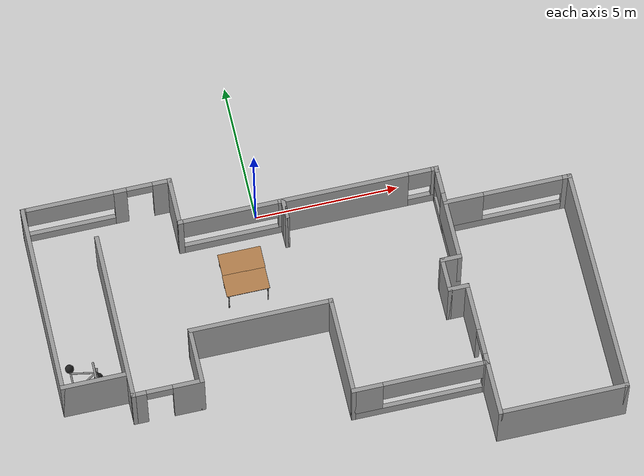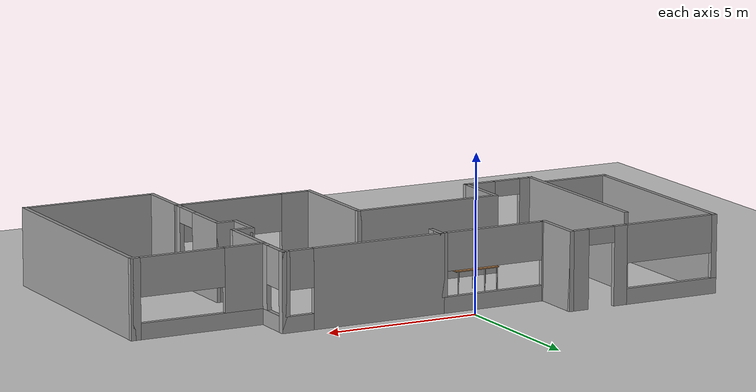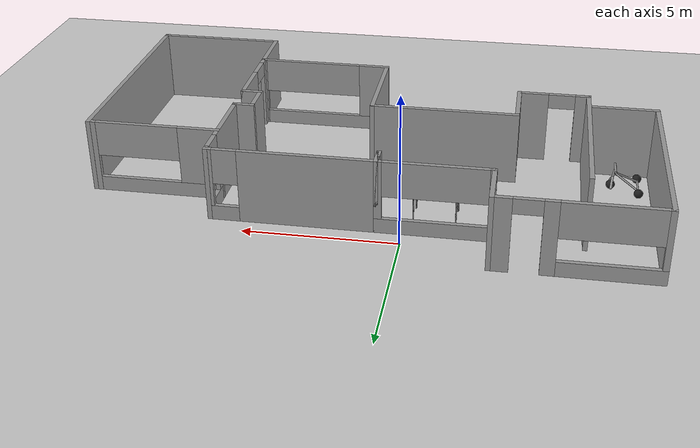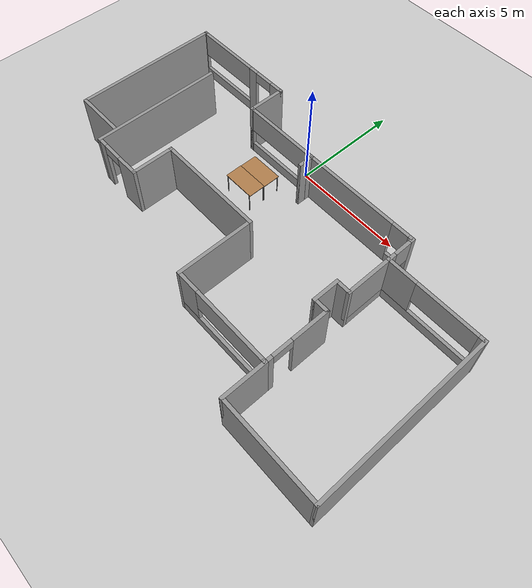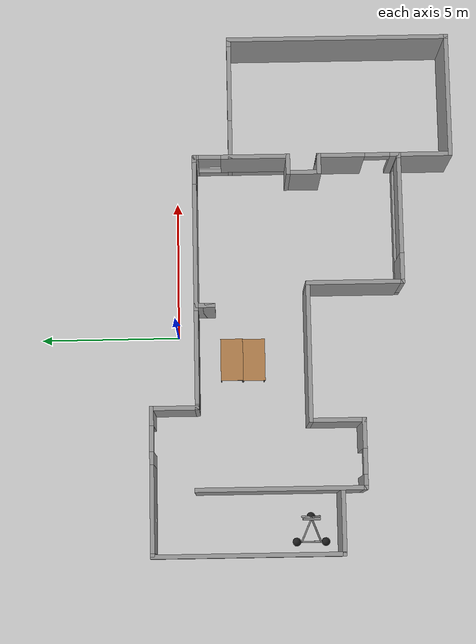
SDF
<sdf version="1.6">
 <world name="default">
  <model name="ground_plane">
   <static>1</static>
   <link name="link">
    <collision name="collision">
     <geometry><plane><normal>0 0 1</normal><size>100 100</size></plane></geometry>
     <surface>
      <contact><collide_bitmask>65535</collide_bitmask></contact>
      <friction><ode><mu>100</mu><mu2>50</mu2></ode></friction>
     </surface>
    </collision>
    <visual name="visual">
     <cast_shadows>0</cast_shadows>
     <geometry><plane><normal>0 0 1</normal><size>100 100</size></plane></geometry>
     <material>
      <script><uri>file://media/materials/scripts/gazebo.material</uri><name>Gazebo/Grey</name></script>
     </material>
    </visual>
   </link>
  </model>
  <model name="home">
   <pose>1.33369 -4.43199 0 0 -0 0</pose>
   <link name="Wall_1">
    <pose>-2.3 3.775 0 0 -0 0</pose>
    <visual name="Wall_1_Visual_0">
     <pose>-1.7772 0 1.25 0 -0 0</pose>
     <geometry><box><size>0.195597 0.15 2.5</size></box></geometry>
     <material>
      <script><uri>file://media/materials/scripts/gazebo.material</uri><name>Gazebo/Grey</name></script>
      <ambient>1 1 1 1</ambient>
     </material>
     <meta><layer>0</layer></meta>
    </visual>
    <collision name="Wall_1_Collision_0">
     <geometry><box><size>0.195597 0.15 2.5</size></box></geometry>
     <pose>-1.7772 0 1.25 0 -0 0</pose>
    </collision>
    <visual name="Wall_1_Visual_1">
     <pose>0.097799 0 0.25 0 -0 0</pose>
     <geometry><box><size>3.5544 0.15 0.5</size></box></geometry>
     <material>
      <script><uri>file://media/materials/scripts/gazebo.material</uri><name>Gazebo/Grey</name></script>
      <ambient>1 1 1 1</ambient>
     </material>
     <meta><layer>0</layer></meta>
    </visual>
    <collision name="Wall_1_Collision_1">
     <geometry><box><size>3.5544 0.15 0.5</size></box></geometry>
     <pose>0.097799 0 0.25 0 -0 0</pose>
    </collision>
    <visual name="Wall_1_Visual_2">
     <pose>1.74801 0 1.5 0 -0 0</pose>
     <geometry><box><size>0.253984 0.15 2</size></box></geometry>
     <material>
      <script><uri>file://media/materials/scripts/gazebo.material</uri><name>Gazebo/Grey</name></script>
      <ambient>1 1 1 1</ambient>
     </material>
     <meta><layer>0</layer></meta>
    </visual>
    <collision name="Wall_1_Collision_2">
     <geometry><box><size>0.253984 0.15 2</size></box></geometry>
     <pose>1.74801 0 1.5 0 -0 0</pose>
    </collision>
    <visual name="Wall_1_Visual_3">
     <pose>-0.029193 0 1.9 0 -0 0</pose>
     <geometry><box><size>3.30042 0.15 1.2</size></box></geometry>
     <material>
      <script><uri>file://media/materials/scripts/gazebo.material</uri><name>Gazebo/Grey</name></script>
      <ambient>1 1 1 1</ambient>
     </material>
     <meta><layer>0</layer></meta>
    </visual>
    <collision name="Wall_1_Collision_3">
     <geometry><box><size>3.30042 0.15 1.2</size></box></geometry>
     <pose>-0.029193 0 1.9 0 -0 0</pose>
    </collision>
   </link>
   <link name="Wall_10">
    <pose>2.55 -3.525 0 0 -0 3.14159</pose>
    <visual name="Wall_10_Visual_0">
     <pose>-2.27293 0 1.25 0 -0 0</pose>
     <geometry><box><size>0.204144 0.15 2.5</size></box></geometry>
     <material>
      <script><uri>file://media/materials/scripts/gazebo.material</uri><name>Gazebo/Grey</name></script>
      <ambient>1 1 1 1</ambient>
     </material>
     <meta><layer>0</layer></meta>
    </visual>
    <collision name="Wall_10_Collision_0">
     <geometry><box><size>0.204144 0.15 2.5</size></box></geometry>
     <pose>-2.27293 0 1.25 0 -0 0</pose>
    </collision>
    <visual name="Wall_10_Visual_1">
     <pose>0.102072 0 0.25 0 -0 0</pose>
     <geometry><box><size>4.54586 0.15 0.5</size></box></geometry>
     <material>
      <script><uri>file://media/materials/scripts/gazebo.material</uri><name>Gazebo/Grey</name></script>
      <ambient>1 1 1 1</ambient>
     </material>
     <meta><layer>0</layer></meta>
    </visual>
    <collision name="Wall_10_Collision_1">
     <geometry><box><size>4.54586 0.15 0.5</size></box></geometry>
     <pose>0.102072 0 0.25 0 -0 0</pose>
    </collision>
    <visual name="Wall_10_Visual_2">
     <pose>1.83208 0 1.5 0 -0 0</pose>
     <geometry><box><size>1.08584 0.15 2</size></box></geometry>
     <material>
      <script><uri>file://media/materials/scripts/gazebo.material</uri><name>Gazebo/Grey</name></script>
      <ambient>1 1 1 1</ambient>
     </material>
     <meta><layer>0</layer></meta>
    </visual>
    <collision name="Wall_10_Collision_2">
     <geometry><box><size>1.08584 0.15 2</size></box></geometry>
     <pose>1.83208 0 1.5 0 -0 0</pose>
    </collision>
    <visual name="Wall_10_Visual_3">
     <pose>-0.440846 0 1.9 0 -0 0</pose>
     <geometry><box><size>3.46002 0.15 1.2</size></box></geometry>
     <material>
      <script><uri>file://media/materials/scripts/gazebo.material</uri><name>Gazebo/Grey</name></script>
      <ambient>1 1 1 1</ambient>
     </material>
     <meta><layer>0</layer></meta>
    </visual>
    <collision name="Wall_10_Collision_3">
     <geometry><box><size>3.46002 0.15 1.2</size></box></geometry>
     <pose>-0.440846 0 1.9 0 -0 0</pose>
    </collision>
   </link>
   <link name="Wall_11">
    <collision name="Wall_11_Collision">
     <geometry><box><size>3.5 0.15 2.5</size></box></geometry>
     <pose>0 0 1.25 0 -0 0</pose>
    </collision>
    <visual name="Wall_11_Visual">
     <pose>0 0 1.25 0 -0 0</pose>
     <geometry><box><size>3.5 0.15 2.5</size></box></geometry>
     <material>
      <script><uri>file://media/materials/scripts/gazebo.material</uri><name>Gazebo/Grey</name></script>
      <ambient>1 1 1 1</ambient>
     </material>
     <meta><layer>0</layer></meta>
    </visual>
    <pose>0.25 -1.85 0 0 -0 1.5708</pose>
   </link>
   <link name="Wall_12">
    <collision name="Wall_12_Collision">
     <geometry><box><size>5 0.15 2.5</size></box></geometry>
     <pose>0 0 1.25 0 -0 0</pose>
    </collision>
    <visual name="Wall_12_Visual">
     <pose>0 0 1.25 0 -0 0</pose>
     <geometry><box><size>5 0.15 2.5</size></box></geometry>
     <material>
      <script><uri>file://media/materials/scripts/gazebo.material</uri><name>Gazebo/Grey</name></script>
      <ambient>1 1 1 1</ambient>
     </material>
     <meta><layer>0</layer></meta>
    </visual>
    <pose>-2.175 -0.175 0 0 -0 3.14159</pose>
   </link>
   <link name="Wall_13">
    <collision name="Wall_13_Collision">
     <geometry><box><size>2 0.15 2.5</size></box></geometry>
     <pose>0 0 1.25 0 -0 0</pose>
    </collision>
    <visual name="Wall_13_Visual">
     <pose>0 0 1.25 0 -0 0</pose>
     <geometry><box><size>2 0.15 2.5</size></box></geometry>
     <material>
      <script><uri>file://media/materials/scripts/gazebo.material</uri><name>Gazebo/Grey</name></script>
      <ambient>1 1 1 1</ambient>
     </material>
     <meta><layer>0</layer></meta>
    </visual>
    <pose>-4.6 -1.1 0 0 -0 -1.5708</pose>
   </link>
   <link name="Wall_14">
    <pose>-5.775 -2.025 0 0 -0 3.14159</pose>
    <visual name="Wall_14_Visual_0">
     <pose>-0.710889 0 1.25 0 -0 0</pose>
     <geometry><box><size>1.07822 0.15 2.5</size></box></geometry>
     <material>
      <script><uri>file://media/materials/scripts/gazebo.material</uri><name>Gazebo/Grey</name></script>
      <ambient>1 1 1 1</ambient>
     </material>
     <meta><layer>0</layer></meta>
    </visual>
    <collision name="Wall_14_Collision_0">
     <geometry><box><size>1.07822 0.15 2.5</size></box></geometry>
     <pose>-0.710889 0 1.25 0 -0 0</pose>
    </collision>
    <visual name="Wall_14_Visual_1">
     <pose>0.989111 0 1.25 0 -0 0</pose>
     <geometry><box><size>0.521779 0.15 2.5</size></box></geometry>
     <material>
      <script><uri>file://media/materials/scripts/gazebo.material</uri><name>Gazebo/Grey</name></script>
      <ambient>1 1 1 1</ambient>
     </material>
     <meta><layer>0</layer></meta>
    </visual>
    <collision name="Wall_14_Collision_1">
     <geometry><box><size>0.521779 0.15 2.5</size></box></geometry>
     <pose>0.989111 0 1.25 0 -0 0</pose>
    </collision>
    <visual name="Wall_14_Visual_2">
     <pose>0.278221 0 2.25 0 -0 0</pose>
     <geometry><box><size>0.9 0.15 0.5</size></box></geometry>
     <material>
      <script><uri>file://media/materials/scripts/gazebo.material</uri><name>Gazebo/Grey</name></script>
      <ambient>1 1 1 1</ambient>
     </material>
     <meta><layer>0</layer></meta>
    </visual>
    <collision name="Wall_14_Collision_2">
     <geometry><box><size>0.9 0.15 0.5</size></box></geometry>
     <pose>0.278221 0 2.25 0 -0 0</pose>
    </collision>
   </link>
   <link name="Wall_15">
    <collision name="Wall_15_Collision">
     <geometry><box><size>6 0.15 2.5</size></box></geometry>
     <pose>0 0 1.25 0 -0 0</pose>
    </collision>
    <visual name="Wall_15_Visual">
     <pose>0 0 1.25 0 -0 0</pose>
     <geometry><box><size>6 0.15 2.5</size></box></geometry>
     <material>
      <script><uri>file://media/materials/scripts/gazebo.material</uri><name>Gazebo/Grey</name></script>
      <ambient>1 1 1 1</ambient>
     </material>
     <meta><layer>0</layer></meta>
    </visual>
    <pose>-6.95 0.9 0 0 -0 1.5708</pose>
   </link>
   <link name="Wall_17">
    <collision name="Wall_17_Collision">
     <geometry><box><size>1.75 0.15 2.5</size></box></geometry>
     <pose>0 0 1.25 0 -0 0</pose>
    </collision>
    <visual name="Wall_17_Visual">
     <pose>0 0 1.25 0 -0 0</pose>
     <geometry><box><size>1.75 0.15 2.5</size></box></geometry>
     <material>
      <script><uri>file://media/materials/scripts/gazebo.material</uri><name>Gazebo/Grey</name></script>
      <ambient>1 1 1 1</ambient>
     </material>
     <meta><layer>0</layer></meta>
    </visual>
    <pose>-4.1 4.575 0 0 -0 1.5708</pose>
   </link>
   <link name="Wall_18">
    <pose>-6.65 5.375 0 0 -0 3.14159</pose>
    <visual name="Wall_18_Visual_0">
     <pose>-2.28809 0 1.25 0 -0 0</pose>
     <geometry><box><size>0.673815 0.15 2.5</size></box></geometry>
     <material>
      <script><uri>file://media/materials/scripts/gazebo.material</uri><name>Gazebo/Grey</name></script>
      <ambient>1 1 1 1</ambient>
     </material>
     <meta><layer>0</layer></meta>
    </visual>
    <collision name="Wall_18_Collision_0">
     <geometry><box><size>0.673815 0.15 2.5</size></box></geometry>
     <pose>-2.28809 0 1.25 0 -0 0</pose>
    </collision>
    <visual name="Wall_18_Visual_1">
     <pose>-0.824481 0 1.25 0 -0 0</pose>
     <geometry><box><size>0.45341 0.15 2.5</size></box></geometry>
     <material>
      <script><uri>file://media/materials/scripts/gazebo.material</uri><name>Gazebo/Grey</name></script>
      <ambient>1 1 1 1</ambient>
     </material>
     <meta><layer>0</layer></meta>
    </visual>
    <collision name="Wall_18_Collision_1">
     <geometry><box><size>0.45341 0.15 2.5</size></box></geometry>
     <pose>-0.824481 0 1.25 0 -0 0</pose>
    </collision>
    <visual name="Wall_18_Visual_2">
     <pose>1.01361 0 0.25 0 -0 0</pose>
     <geometry><box><size>3.22278 0.15 0.5</size></box></geometry>
     <material>
      <script><uri>file://media/materials/scripts/gazebo.material</uri><name>Gazebo/Grey</name></script>
      <ambient>1 1 1 1</ambient>
     </material>
     <meta><layer>0</layer></meta>
    </visual>
    <collision name="Wall_18_Collision_2">
     <geometry><box><size>3.22278 0.15 0.5</size></box></geometry>
     <pose>1.01361 0 0.25 0 -0 0</pose>
    </collision>
    <visual name="Wall_18_Visual_3">
     <pose>2.53082 0 1.5 0 -0 0</pose>
     <geometry><box><size>0.188359 0.15 2</size></box></geometry>
     <material>
      <script><uri>file://media/materials/scripts/gazebo.material</uri><name>Gazebo/Grey</name></script>
      <ambient>1 1 1 1</ambient>
     </material>
     <meta><layer>0</layer></meta>
    </visual>
    <collision name="Wall_18_Collision_3">
     <geometry><box><size>0.188359 0.15 2</size></box></geometry>
     <pose>2.53082 0 1.5 0 -0 0</pose>
    </collision>
    <visual name="Wall_18_Visual_4">
     <pose>0.919433 0 1.9 0 -0 0</pose>
     <geometry><box><size>3.03442 0.15 1.2</size></box></geometry>
     <material>
      <script><uri>file://media/materials/scripts/gazebo.material</uri><name>Gazebo/Grey</name></script>
      <ambient>1 1 1 1</ambient>
     </material>
     <meta><layer>0</layer></meta>
    </visual>
    <collision name="Wall_18_Collision_4">
     <geometry><box><size>3.03442 0.15 1.2</size></box></geometry>
     <pose>0.919433 0 1.9 0 -0 0</pose>
    </collision>
    <visual name="Wall_18_Visual_5">
     <pose>-1.50118 0 2.25 0 -0 0</pose>
     <geometry><box><size>0.9 0.15 0.5</size></box></geometry>
     <material>
      <script><uri>file://media/materials/scripts/gazebo.material</uri><name>Gazebo/Grey</name></script>
      <ambient>1 1 1 1</ambient>
     </material>
     <meta><layer>0</layer></meta>
    </visual>
    <collision name="Wall_18_Collision_5">
     <geometry><box><size>0.9 0.15 0.5</size></box></geometry>
     <pose>-1.50118 0 2.25 0 -0 0</pose>
    </collision>
   </link>
   <link name="Wall_19">
    <collision name="Wall_19_Collision">
     <geometry><box><size>6.75 0.15 2.5</size></box></geometry>
     <pose>0 0 1.25 0 -0 0</pose>
    </collision>
    <visual name="Wall_19_Visual">
     <pose>0 0 1.25 0 -0 0</pose>
     <geometry><box><size>6.75 0.15 2.5</size></box></geometry>
     <material>
      <script><uri>file://media/materials/scripts/gazebo.material</uri><name>Gazebo/Grey</name></script>
      <ambient>1 1 1 1</ambient>
     </material>
     <meta><layer>0</layer></meta>
    </visual>
    <pose>-9.2 2.075 0 0 -0 -1.5708</pose>
   </link>
   <link name="Wall_2">
    <collision name="Wall_2_Collision">
     <geometry><box><size>0.75 0.15 2.5</size></box></geometry>
     <pose>0 0 1.25 0 -0 0</pose>
    </collision>
    <visual name="Wall_2_Visual">
     <pose>0 0 1.25 0 -0 0</pose>
     <geometry><box><size>0.75 0.15 2.5</size></box></geometry>
     <material>
      <script><uri>file://media/materials/scripts/gazebo.material</uri><name>Gazebo/Grey</name></script>
      <ambient>1 1 1 1</ambient>
     </material>
     <meta><layer>0</layer></meta>
    </visual>
    <pose>-0.5 3.475 0 0 -0 -1.5708</pose>
   </link>
   <link name="Wall_20">
    <collision name="Wall_20_Collision">
     <geometry><box><size>2.25 0.15 2.5</size></box></geometry>
     <pose>0 0 1.25 0 -0 0</pose>
    </collision>
    <visual name="Wall_20_Visual">
     <pose>0 0 1.25 0 -0 0</pose>
     <geometry><box><size>2.25 0.15 2.5</size></box></geometry>
     <material>
      <script><uri>file://media/materials/scripts/gazebo.material</uri><name>Gazebo/Grey</name></script>
      <ambient>1 1 1 1</ambient>
     </material>
     <meta><layer>0</layer></meta>
    </visual>
    <pose>-8.15 -1.225 0 0 -0 0</pose>
   </link>
   <link name="Wall_22">
    <collision name="Wall_22_Collision">
     <geometry><box><size>2 0.15 2.5</size></box></geometry>
     <pose>0 0 1.25 0 -0 0</pose>
    </collision>
    <visual name="Wall_22_Visual">
     <pose>0 0 1.25 0 -0 0</pose>
     <geometry><box><size>2 0.15 2.5</size></box></geometry>
     <material>
      <script><uri>file://media/materials/scripts/gazebo.material</uri><name>Gazebo/Grey</name></script>
      <ambient>1 1 1 1</ambient>
     </material>
     <meta><layer>0</layer></meta>
    </visual>
    <pose>4.85 -4.45 0 0 -0 -1.5708</pose>
   </link>
   <link name="Wall_23">
    <collision name="Wall_23_Collision">
     <geometry><box><size>4.5 0.15 2.5</size></box></geometry>
     <pose>0 0 1.25 0 -0 0</pose>
    </collision>
    <visual name="Wall_23_Visual">
     <pose>0 0 1.25 0 -0 0</pose>
     <geometry><box><size>4.5 0.15 2.5</size></box></geometry>
     <material>
      <script><uri>file://media/materials/scripts/gazebo.material</uri><name>Gazebo/Grey</name></script>
      <ambient>1 1 1 1</ambient>
     </material>
     <meta><layer>0</layer></meta>
    </visual>
    <pose>7.025 -5.375 0 0 -0 0</pose>
   </link>
   <link name="Wall_24">
    <collision name="Wall_24_Collision">
     <geometry><box><size>8 0.15 2.5</size></box></geometry>
     <pose>0 0 1.25 0 -0 0</pose>
    </collision>
    <visual name="Wall_24_Visual">
     <pose>0 0 1.25 0 -0 0</pose>
     <geometry><box><size>8 0.15 2.5</size></box></geometry>
     <material>
      <script><uri>file://media/materials/scripts/gazebo.material</uri><name>Gazebo/Grey</name></script>
      <ambient>1 1 1 1</ambient>
     </material>
     <meta><layer>0</layer></meta>
    </visual>
    <pose>9.2 -1.45 0 0 -0 1.5708</pose>
   </link>
   <link name="Wall_25">
    <pose>7.025 2.475 0 0 -0 3.14159</pose>
    <visual name="Wall_25_Visual_0">
     <pose>-2.08764 0 1.25 0 -0 0</pose>
     <geometry><box><size>0.324712 0.15 2.5</size></box></geometry>
     <material>
      <script><uri>file://media/materials/scripts/gazebo.material</uri><name>Gazebo/Grey</name></script>
      <ambient>1 1 1 1</ambient>
     </material>
     <meta><layer>0</layer></meta>
    </visual>
    <collision name="Wall_25_Collision_0">
     <geometry><box><size>0.324712 0.15 2.5</size></box></geometry>
     <pose>-2.08764 0 1.25 0 -0 0</pose>
    </collision>
    <visual name="Wall_25_Visual_1">
     <pose>0.162356 0 0.25 0 -0 0</pose>
     <geometry><box><size>4.17529 0.15 0.5</size></box></geometry>
     <material>
      <script><uri>file://media/materials/scripts/gazebo.material</uri><name>Gazebo/Grey</name></script>
      <ambient>1 1 1 1</ambient>
     </material>
     <meta><layer>0</layer></meta>
    </visual>
    <collision name="Wall_25_Collision_1">
     <geometry><box><size>4.17529 0.15 0.5</size></box></geometry>
     <pose>0.162356 0 0.25 0 -0 0</pose>
    </collision>
    <visual name="Wall_25_Visual_2">
     <pose>1.54656 0 1.5 0 -0 0</pose>
     <geometry><box><size>1.40687 0.15 2</size></box></geometry>
     <material>
      <script><uri>file://media/materials/scripts/gazebo.material</uri><name>Gazebo/Grey</name></script>
      <ambient>1 1 1 1</ambient>
     </material>
     <meta><layer>0</layer></meta>
    </visual>
    <collision name="Wall_25_Collision_2">
     <geometry><box><size>1.40687 0.15 2</size></box></geometry>
     <pose>1.54656 0 1.5 0 -0 0</pose>
    </collision>
    <visual name="Wall_25_Visual_3">
     <pose>-0.54108 0 1.9 0 -0 0</pose>
     <geometry><box><size>2.76842 0.15 1.2</size></box></geometry>
     <material>
      <script><uri>file://media/materials/scripts/gazebo.material</uri><name>Gazebo/Grey</name></script>
      <ambient>1 1 1 1</ambient>
     </material>
     <meta><layer>0</layer></meta>
    </visual>
    <collision name="Wall_25_Collision_3">
     <geometry><box><size>2.76842 0.15 1.2</size></box></geometry>
     <pose>-0.54108 0 1.9 0 -0 0</pose>
    </collision>
   </link>
   <link name="Wall_3">
    <collision name="Wall_3_Collision">
     <geometry><box><size>0.75 0.15 2.5</size></box></geometry>
     <pose>0 0 1.25 0 -0 0</pose>
    </collision>
    <visual name="Wall_3_Visual">
     <pose>0 0 1.25 0 -0 0</pose>
     <geometry><box><size>0.75 0.15 2.5</size></box></geometry>
     <material>
      <script><uri>file://media/materials/scripts/gazebo.material</uri><name>Gazebo/Grey</name></script>
      <ambient>1 1 1 1</ambient>
     </material>
     <meta><layer>0</layer></meta>
    </visual>
    <pose>-0.5 3.475 0 0 -0 1.5708</pose>
   </link>
   <link name="Wall_4">
    <pose>2.175 3.775 0 0 -0 0</pose>
    <visual name="Wall_4_Visual_0">
     <pose>-0.528672 0 1.25 0 -0 0</pose>
     <geometry><box><size>4.44266 0.15 2.5</size></box></geometry>
     <material>
      <script><uri>file://media/materials/scripts/gazebo.material</uri><name>Gazebo/Grey</name></script>
      <ambient>1 1 1 1</ambient>
     </material>
     <meta><layer>0</layer></meta>
    </visual>
    <collision name="Wall_4_Collision_0">
     <geometry><box><size>4.44266 0.15 2.5</size></box></geometry>
     <pose>-0.528672 0 1.25 0 -0 0</pose>
    </collision>
    <visual name="Wall_4_Visual_1">
     <pose>2.22133 0 0.25 0 -0 0</pose>
     <geometry><box><size>1.05734 0.15 0.5</size></box></geometry>
     <material>
      <script><uri>file://media/materials/scripts/gazebo.material</uri><name>Gazebo/Grey</name></script>
      <ambient>1 1 1 1</ambient>
     </material>
     <meta><layer>0</layer></meta>
    </visual>
    <collision name="Wall_4_Collision_1">
     <geometry><box><size>1.05734 0.15 0.5</size></box></geometry>
     <pose>2.22133 0 0.25 0 -0 0</pose>
    </collision>
    <visual name="Wall_4_Visual_2">
     <pose>2.62133 0 1.5 0 -0 0</pose>
     <geometry><box><size>0.257344 0.15 2</size></box></geometry>
     <material>
      <script><uri>file://media/materials/scripts/gazebo.material</uri><name>Gazebo/Grey</name></script>
      <ambient>1 1 1 1</ambient>
     </material>
     <meta><layer>0</layer></meta>
    </visual>
    <collision name="Wall_4_Collision_2">
     <geometry><box><size>0.257344 0.15 2</size></box></geometry>
     <pose>2.62133 0 1.5 0 -0 0</pose>
    </collision>
    <visual name="Wall_4_Visual_3">
     <pose>2.09266 0 1.9 0 -0 0</pose>
     <geometry><box><size>0.8 0.15 1.2</size></box></geometry>
     <material>
      <script><uri>file://media/materials/scripts/gazebo.material</uri><name>Gazebo/Grey</name></script>
      <ambient>1 1 1 1</ambient>
     </material>
     <meta><layer>0</layer></meta>
    </visual>
    <collision name="Wall_4_Collision_3">
     <geometry><box><size>0.8 0.15 1.2</size></box></geometry>
     <pose>2.09266 0 1.9 0 -0 0</pose>
    </collision>
   </link>
   <link name="Wall_5">
    <pose>4.85 2.1 0 0 -0 -1.5708</pose>
    <visual name="Wall_5_Visual_0">
     <pose>-1.63495 0 1.25 0 -0 0</pose>
     <geometry><box><size>0.230105 0.15 2.5</size></box></geometry>
     <material>
      <script><uri>file://media/materials/scripts/gazebo.material</uri><name>Gazebo/Grey</name></script>
      <ambient>1 1 1 1</ambient>
     </material>
     <meta><layer>0</layer></meta>
    </visual>
    <collision name="Wall_5_Collision_0">
     <geometry><box><size>0.230105 0.15 2.5</size></box></geometry>
     <pose>-1.63495 0 1.25 0 -0 0</pose>
    </collision>
    <visual name="Wall_5_Visual_1">
     <pose>0.115053 0 0.25 0 -0 0</pose>
     <geometry><box><size>3.26989 0.15 0.5</size></box></geometry>
     <material>
      <script><uri>file://media/materials/scripts/gazebo.material</uri><name>Gazebo/Grey</name></script>
      <ambient>1 1 1 1</ambient>
     </material>
     <meta><layer>0</layer></meta>
    </visual>
    <collision name="Wall_5_Collision_1">
     <geometry><box><size>3.26989 0.15 0.5</size></box></geometry>
     <pose>0.115053 0 0.25 0 -0 0</pose>
    </collision>
    <visual name="Wall_5_Visual_2">
     <pose>0.515053 0 1.5 0 -0 0</pose>
     <geometry><box><size>2.4699 0.15 2</size></box></geometry>
     <material>
      <script><uri>file://media/materials/scripts/gazebo.material</uri><name>Gazebo/Grey</name></script>
      <ambient>1 1 1 1</ambient>
     </material>
     <meta><layer>0</layer></meta>
    </visual>
    <collision name="Wall_5_Collision_2">
     <geometry><box><size>2.4699 0.15 2</size></box></geometry>
     <pose>0.515053 0 1.5 0 -0 0</pose>
    </collision>
    <visual name="Wall_5_Visual_3">
     <pose>-1.1199 0 1.9 0 -0 0</pose>
     <geometry><box><size>0.8 0.15 1.2</size></box></geometry>
     <material>
      <script><uri>file://media/materials/scripts/gazebo.material</uri><name>Gazebo/Grey</name></script>
      <ambient>1 1 1 1</ambient>
     </material>
     <meta><layer>0</layer></meta>
    </visual>
    <collision name="Wall_5_Collision_3">
     <geometry><box><size>0.8 0.15 1.2</size></box></geometry>
     <pose>-1.1199 0 1.9 0 -0 0</pose>
    </collision>
   </link>
   <link name="Wall_6">
    <collision name="Wall_6_Collision">
     <geometry><box><size>0.75 0.15 2.5</size></box></geometry>
     <pose>0 0 1.25 0 -0 0</pose>
    </collision>
    <visual name="Wall_6_Visual">
     <pose>0 0 1.25 0 -0 0</pose>
     <geometry><box><size>0.75 0.15 2.5</size></box></geometry>
     <material>
      <script><uri>file://media/materials/scripts/gazebo.material</uri><name>Gazebo/Grey</name></script>
      <ambient>1 1 1 1</ambient>
     </material>
     <meta><layer>0</layer></meta>
    </visual>
    <pose>4.55 0.425 0 0 -0 3.14159</pose>
   </link>
   <link name="Wall_7">
    <collision name="Wall_7_Collision">
     <geometry><box><size>1.25 0.15 2.5</size></box></geometry>
     <pose>0 0 1.25 0 -0 0</pose>
    </collision>
    <visual name="Wall_7_Visual">
     <pose>0 0 1.25 0 -0 0</pose>
     <geometry><box><size>1.25 0.15 2.5</size></box></geometry>
     <material>
      <script><uri>file://media/materials/scripts/gazebo.material</uri><name>Gazebo/Grey</name></script>
      <ambient>1 1 1 1</ambient>
     </material>
     <meta><layer>0</layer></meta>
    </visual>
    <pose>4.25 -0.125 0 0 -0 -1.5708</pose>
   </link>
   <link name="Wall_8">
    <collision name="Wall_8_Collision">
     <geometry><box><size>0.75 0.15 2.5</size></box></geometry>
     <pose>0 0 1.25 0 -0 0</pose>
    </collision>
    <visual name="Wall_8_Visual">
     <pose>0 0 1.25 0 -0 0</pose>
     <geometry><box><size>0.75 0.15 2.5</size></box></geometry>
     <material>
      <script><uri>file://media/materials/scripts/gazebo.material</uri><name>Gazebo/Grey</name></script>
      <ambient>1 1 1 1</ambient>
     </material>
     <meta><layer>0</layer></meta>
    </visual>
    <pose>4.55 -0.675 0 0 -0 0</pose>
   </link>
   <link name="Wall_9">
    <pose>4.85 -2.1 0 0 -0 -1.5708</pose>
    <visual name="Wall_9_Visual_0">
     <pose>-0.642425 0 1.25 0 -0 0</pose>
     <geometry><box><size>1.71515 0.15 2.5</size></box></geometry>
     <material>
      <script><uri>file://media/materials/scripts/gazebo.material</uri><name>Gazebo/Grey</name></script>
      <ambient>1 1 1 1</ambient>
     </material>
     <meta><layer>0</layer></meta>
    </visual>
    <collision name="Wall_9_Collision_0">
     <geometry><box><size>1.71515 0.15 2.5</size></box></geometry>
     <pose>-0.642425 0 1.25 0 -0 0</pose>
    </collision>
    <visual name="Wall_9_Visual_1">
     <pose>1.30757 0 1.25 0 -0 0</pose>
     <geometry><box><size>0.38485 0.15 2.5</size></box></geometry>
     <material>
      <script><uri>file://media/materials/scripts/gazebo.material</uri><name>Gazebo/Grey</name></script>
      <ambient>1 1 1 1</ambient>
     </material>
     <meta><layer>0</layer></meta>
    </visual>
    <collision name="Wall_9_Collision_1">
     <geometry><box><size>0.38485 0.15 2.5</size></box></geometry>
     <pose>1.30757 0 1.25 0 -0 0</pose>
    </collision>
    <visual name="Wall_9_Visual_2">
     <pose>0.66515 0 2.25 0 -0 0</pose>
     <geometry><box><size>0.9 0.15 0.5</size></box></geometry>
     <material>
      <script><uri>file://media/materials/scripts/gazebo.material</uri><name>Gazebo/Grey</name></script>
      <ambient>1 1 1 1</ambient>
     </material>
     <meta><layer>0</layer></meta>
    </visual>
    <collision name="Wall_9_Collision_2">
     <geometry><box><size>0.9 0.15 0.5</size></box></geometry>
     <pose>0.66515 0 2.25 0 -0 0</pose>
    </collision>
   </link>
   <static>1</static>
  </model>
  <model name="table">
   <static>1</static>
   <link name="link">
    <collision name="surface">
     <pose>0 0 1 0 -0 0</pose>
     <geometry><box><size>1.5 0.8 0.03</size></box></geometry>
     <surface><friction><ode><mu>0.6</mu><mu2>0.6</mu2></ode></friction></surface>
    </collision>
    <visual name="visual1">
     <pose>0 0 1 0 -0 0</pose>
     <geometry><box><size>1.5 0.8 0.03</size></box></geometry>
     <material>
      <script><uri>file://media/materials/scripts/gazebo.material</uri><name>Gazebo/Wood</name></script>
     </material>
    </visual>
    <collision name="front_left_leg">
     <pose>0.68 0.38 0.5 0 -0 0</pose>
     <geometry><cylinder><radius>0.02</radius><length>1</length></cylinder></geometry>
    </collision>
    <visual name="front_left_leg">
     <pose>0.68 0.38 0.5 0 -0 0</pose>
     <geometry><cylinder><radius>0.02</radius><length>1</length></cylinder></geometry>
     <material>
      <script><uri>file://media/materials/scripts/gazebo.material</uri><name>Gazebo/Grey</name></script>
     </material>
    </visual>
    <collision name="front_right_leg">
     <pose>0.68 -0.38 0.5 0 -0 0</pose>
     <geometry><cylinder><radius>0.02</radius><length>1</length></cylinder></geometry>
    </collision>
    <visual name="front_right_leg">
     <pose>0.68 -0.38 0.5 0 -0 0</pose>
     <geometry><cylinder><radius>0.02</radius><length>1</length></cylinder></geometry>
     <material>
      <script><uri>file://media/materials/scripts/gazebo.material</uri><name>Gazebo/Grey</name></script>
     </material>
    </visual>
    <collision name="back_right_leg">
     <pose>-0.68 -0.38 0.5 0 -0 0</pose>
     <geometry><cylinder><radius>0.02</radius><length>1</length></cylinder></geometry>
    </collision>
    <visual name="back_right_leg">
     <pose>-0.68 -0.38 0.5 0 -0 0</pose>
     <geometry><cylinder><radius>0.02</radius><length>1</length></cylinder></geometry>
     <material>
      <script><uri>file://media/materials/scripts/gazebo.material</uri><name>Gazebo/Grey</name></script>
     </material>
    </visual>
    <collision name="back_left_leg">
     <pose>-0.68 0.38 0.5 0 -0 0</pose>
     <geometry><cylinder><radius>0.02</radius><length>1</length></cylinder></geometry>
    </collision>
    <visual name="back_left_leg">
     <pose>-0.68 0.38 0.5 0 -0 0</pose>
     <geometry><cylinder><radius>0.02</radius><length>1</length></cylinder></geometry>
     <material>
      <script><uri>file://media/materials/scripts/gazebo.material</uri><name>Gazebo/Grey</name></script>
     </material>
    </visual>
   </link>
   <pose>-0.917423 -1.8949 0 0 -0 0</pose>
  </model>
  <model name="table_0">
   <static>1</static>
   <link name="link">
    <collision name="surface">
     <pose>0 0 1 0 -0 0</pose>
     <geometry><box><size>1.5 0.8 0.03</size></box></geometry>
     <surface><friction><ode><mu>0.6</mu><mu2>0.6</mu2></ode></friction></surface>
    </collision>
    <visual name="visual1">
     <pose>0 0 1 0 -0 0</pose>
     <geometry><box><size>1.5 0.8 0.03</size></box></geometry>
     <material>
      <script><uri>file://media/materials/scripts/gazebo.material</uri><name>Gazebo/Wood</name></script>
     </material>
    </visual>
    <collision name="front_left_leg">
     <pose>0.68 0.38 0.5 0 -0 0</pose>
     <geometry><cylinder><radius>0.02</radius><length>1</length></cylinder></geometry>
    </collision>
    <visual name="front_left_leg">
     <pose>0.68 0.38 0.5 0 -0 0</pose>
     <geometry><cylinder><radius>0.02</radius><length>1</length></cylinder></geometry>
     <material>
      <script><uri>file://media/materials/scripts/gazebo.material</uri><name>Gazebo/Grey</name></script>
     </material>
    </visual>
    <collision name="front_right_leg">
     <pose>0.68 -0.38 0.5 0 -0 0</pose>
     <geometry><cylinder><radius>0.02</radius><length>1</length></cylinder></geometry>
    </collision>
    <visual name="front_right_leg">
     <pose>0.68 -0.38 0.5 0 -0 0</pose>
     <geometry><cylinder><radius>0.02</radius><length>1</length></cylinder></geometry>
     <material>
      <script><uri>file://media/materials/scripts/gazebo.material</uri><name>Gazebo/Grey</name></script>
     </material>
    </visual>
    <collision name="back_right_leg">
     <pose>-0.68 -0.38 0.5 0 -0 0</pose>
     <geometry><cylinder><radius>0.02</radius><length>1</length></cylinder></geometry>
    </collision>
    <visual name="back_right_leg">
     <pose>-0.68 -0.38 0.5 0 -0 0</pose>
     <geometry><cylinder><radius>0.02</radius><length>1</length></cylinder></geometry>
     <material>
      <script><uri>file://media/materials/scripts/gazebo.material</uri><name>Gazebo/Grey</name></script>
     </material>
    </visual>
    <collision name="back_left_leg">
     <pose>-0.68 0.38 0.5 0 -0 0</pose>
     <geometry><cylinder><radius>0.02</radius><length>1</length></cylinder></geometry>
    </collision>
    <visual name="back_left_leg">
     <pose>-0.68 0.38 0.5 0 -0 0</pose>
     <geometry><cylinder><radius>0.02</radius><length>1</length></cylinder></geometry>
     <material>
      <script><uri>file://media/materials/scripts/gazebo.material</uri><name>Gazebo/Grey</name></script>
     </material>
    </visual>
   </link>
   <pose>-0.932979 -2.68394 0 0 -0 0</pose>
  </model>
  <model name="trisphere_cycle">
   <link name="frame">
    <pose>-0.408559 0 0.385023 0 -0.522021 0</pose>
    <inertial>
     <mass>10</mass>
     <inertia><ixx>0.228</ixx><iyy>0.743521</iyy><izz>0.965521</izz><ixy>0</ixy><ixz>0</ixz><iyz>0</iyz></inertia>
    </inertial>
    <collision name="axle_collision">
     <pose>-0.471335 0 0 1.5708 -0 0</pose>
     <geometry><cylinder><length>1.03923</length><radius>0.03</radius></cylinder></geometry>
    </collision>
    <visual name="axle_visual">
     <pose>-0.471335 0 0 1.5708 -0 0</pose>
     <geometry><cylinder><length>1.03923</length><radius>0.03</radius></cylinder></geometry>
     <material>
      <script><uri>file://media/materials/scripts/gazebo.material</uri><name>Gazebo/Grey</name></script>
     </material>
    </visual>
    <collision name="frame_left_collision">
     <pose>0 0.171552 0 -2.79253 1.57079 3.14159</pose>
     <geometry><cylinder><length>1.00317</length><radius>0.03</radius></cylinder></geometry>
    </collision>
    <visual name="frame_left_visual">
     <pose>0 0.171552 0 -2.79253 1.57079 3.14159</pose>
     <geometry><cylinder><length>1.00317</length><radius>0.03</radius></cylinder></geometry>
     <material>
      <script><uri>file://media/materials/scripts/gazebo.material</uri><name>Gazebo/Grey</name></script>
     </material>
    </visual>
    <collision name="frame_right_collision">
     <pose>0 -0.171552 0 2.79253 1.57079 -3.14159</pose>
     <geometry><cylinder><length>1.00317</length><radius>0.03</radius></cylinder></geometry>
    </collision>
    <visual name="frame_right_visual">
     <pose>0 -0.171552 0 2.79253 1.57079 -3.14159</pose>
     <geometry><cylinder><length>1.00317</length><radius>0.03</radius></cylinder></geometry>
     <material>
      <script><uri>file://media/materials/scripts/gazebo.material</uri><name>Gazebo/Grey</name></script>
     </material>
    </visual>
   </link>
   <link name="fork">
    <pose>0.041441 0 0.385023 0 -0.174533 0</pose>
    <inertial>
     <mass>3</mass>
     <inertia>
      <ixx>0.158203</ixx>
      <iyy>0.0583594</iyy>
      <izz>0.102656</izz>
      <ixy>0</ixy>
      <ixz>0</ixz>
      <iyz>0</iyz>
     </inertia>
    </inertial>
    <collision name="handlebars_collision">
     <pose>0 0 0.397748 1.5708 -0 0</pose>
     <geometry><cylinder><length>0.636396</length><radius>0.0375</radius></cylinder></geometry>
    </collision>
    <visual name="handlebars_visual">
     <pose>0 0 0.397748 1.5708 -0 0</pose>
     <geometry><cylinder><length>0.636396</length><radius>0.0375</radius></cylinder></geometry>
     <material>
      <script><uri>file://media/materials/scripts/gazebo.material</uri><name>Gazebo/Grey</name></script>
     </material>
    </visual>
    <collision name="headtube_collision">
     <pose>0 0 0.238649 0 -0 0</pose>
     <geometry><cylinder><length>0.318198</length><radius>0.0375</radius></cylinder></geometry>
    </collision>
    <visual name="headtube_visual">
     <pose>0 0 0.238649 0 -0 0</pose>
     <geometry><cylinder><length>0.318198</length><radius>0.0375</radius></cylinder></geometry>
     <material>
      <script><uri>file://media/materials/scripts/gazebo.material</uri><name>Gazebo/Grey</name></script>
     </material>
    </visual>
    <collision name="spindle_collision">
     <pose>0 0 -0.238649 1.5708 -0 0</pose>
     <geometry><cylinder><length>0.636396</length><radius>0.015</radius></cylinder></geometry>
    </collision>
    <visual name="spindle_visual">
     <pose>0 0 -0.238649 1.5708 -0 0</pose>
     <geometry><cylinder><length>0.636396</length><radius>0.015</radius></cylinder></geometry>
     <material>
      <script><uri>file://media/materials/scripts/gazebo.material</uri><name>Gazebo/Grey</name></script>
     </material>
    </visual>
    <collision name="fork_left_collision">
     <pose>0 0.159099 -0.07955 0.785398 -0 0</pose>
     <geometry><cylinder><length>0.45</length><radius>0.0375</radius></cylinder></geometry>
    </collision>
    <visual name="fork_left_visual">
     <pose>0 0.159099 -0.07955 0.785398 -0 0</pose>
     <geometry><cylinder><length>0.45</length><radius>0.0375</radius></cylinder></geometry>
     <material>
      <script><uri>file://media/materials/scripts/gazebo.material</uri><name>Gazebo/Grey</name></script>
     </material>
    </visual>
    <collision name="fork_right_collision">
     <pose>0 -0.159099 -0.07955 -0.785398 0 0</pose>
     <geometry><cylinder><length>0.45</length><radius>0.0375</radius></cylinder></geometry>
    </collision>
    <visual name="fork_right_visual">
     <pose>0 -0.159099 -0.07955 -0.785398 0 0</pose>
     <geometry><cylinder><length>0.45</length><radius>0.0375</radius></cylinder></geometry>
     <material>
      <script><uri>file://media/materials/scripts/gazebo.material</uri><name>Gazebo/Grey</name></script>
     </material>
    </visual>
   </link>
   <link name="wheel_front">
    <pose>0.082882 0 0.15 0 -0 0</pose>
    <inertial>
     <mass>0.5</mass>
     <inertia><ixx>0.0045</ixx><iyy>0.0045</iyy><izz>0.0045</izz><ixy>0</ixy><ixz>0</ixz><iyz>0</iyz></inertia>
    </inertial>
    <collision name="collision">
     <geometry><sphere><radius>0.15</radius></sphere></geometry>
     <surface><contact><ode><kp>1e+08</kp><kd>1</kd><min_depth>0.0005</min_depth></ode></contact></surface>
    </collision>
    <visual name="visual">
     <geometry><sphere><radius>0.15</radius></sphere></geometry>
     <material>
      <script><uri>file://media/materials/scripts/gazebo.material</uri><name>Gazebo/Black</name></script>
     </material>
    </visual>
   </link>
   <joint name="wheel_front_steer" type="revolute">
    <parent>frame</parent>
    <child>fork</child>
    <axis>
     <xyz>0 0 1</xyz>
     <limit><lower>-0.959931</lower><upper>0.959931</upper></limit>
     <use_parent_model_frame>0</use_parent_model_frame>
     <dynamics><spring_reference>0</spring_reference><spring_stiffness>0</spring_stiffness></dynamics>
    </axis>
   </joint>
   <joint name="wheel_front_spin" type="revolute">
    <parent>fork</parent>
    <child>wheel_front</child>
    <axis>
     <xyz>0 1 0</xyz>
     <use_parent_model_frame>0</use_parent_model_frame>
     <limit><lower>-1e+16</lower><upper>1e+16</upper></limit>
     <dynamics><spring_reference>0</spring_reference><spring_stiffness>0</spring_stiffness></dynamics>
    </axis>
   </joint>
   <link name="wheel_rear_left">
    <pose>-0.817118 0.519615 0.15 0 -0 0</pose>
    <inertial>
     <mass>0.5</mass>
     <inertia><ixx>0.0045</ixx><iyy>0.0045</iyy><izz>0.0045</izz><ixy>0</ixy><ixz>0</ixz><iyz>0</iyz></inertia>
    </inertial>
    <collision name="collision">
     <geometry><sphere><radius>0.15</radius></sphere></geometry>
     <surface><contact><ode><kp>1e+08</kp><kd>1</kd><min_depth>0.0005</min_depth></ode></contact></surface>
    </collision>
    <visual name="visual">
     <geometry><sphere><radius>0.15</radius></sphere></geometry>
     <material>
      <script><uri>file://media/materials/scripts/gazebo.material</uri><name>Gazebo/Black</name></script>
     </material>
    </visual>
   </link>
   <joint name="wheel_rear_left_spin" type="revolute">
    <parent>frame</parent>
    <child>wheel_rear_left</child>
    <axis>
     <xyz>0 1 0</xyz>
     <use_parent_model_frame>0</use_parent_model_frame>
     <limit><lower>-1e+16</lower><upper>1e+16</upper></limit>
     <dynamics><spring_reference>0</spring_reference><spring_stiffness>0</spring_stiffness></dynamics>
    </axis>
   </joint>
   <link name="wheel_rear_right">
    <pose>-0.817118 -0.519615 0.15 0 -0 0</pose>
    <inertial>
     <mass>0.5</mass>
     <inertia><ixx>0.0045</ixx><iyy>0.0045</iyy><izz>0.0045</izz><ixy>0</ixy><ixz>0</ixz><iyz>0</iyz></inertia>
    </inertial>
    <collision name="collision">
     <geometry><sphere><radius>0.15</radius></sphere></geometry>
     <surface><contact><ode><kp>1e+08</kp><kd>1</kd><min_depth>0.0005</min_depth></ode></contact></surface>
    </collision>
    <visual name="visual">
     <geometry><sphere><radius>0.15</radius></sphere></geometry>
     <material>
      <script><uri>file://media/materials/scripts/gazebo.material</uri><name>Gazebo/Black</name></script>
     </material>
    </visual>
   </link>
   <joint name="wheel_rear_right_spin" type="revolute">
    <parent>frame</parent>
    <child>wheel_rear_right</child>
    <axis>
     <xyz>0 1 0</xyz>
     <use_parent_model_frame>0</use_parent_model_frame>
     <limit><lower>-1e+16</lower><upper>1e+16</upper></limit>
     <dynamics><spring_reference>0</spring_reference><spring_stiffness>0</spring_stiffness></dynamics>
    </axis>
   </joint>
   <pose>-6.59104 -4.63278 -0.000501 -0 1e-06 -0.000202</pose>
  </model>
 </world>
</sdf>
